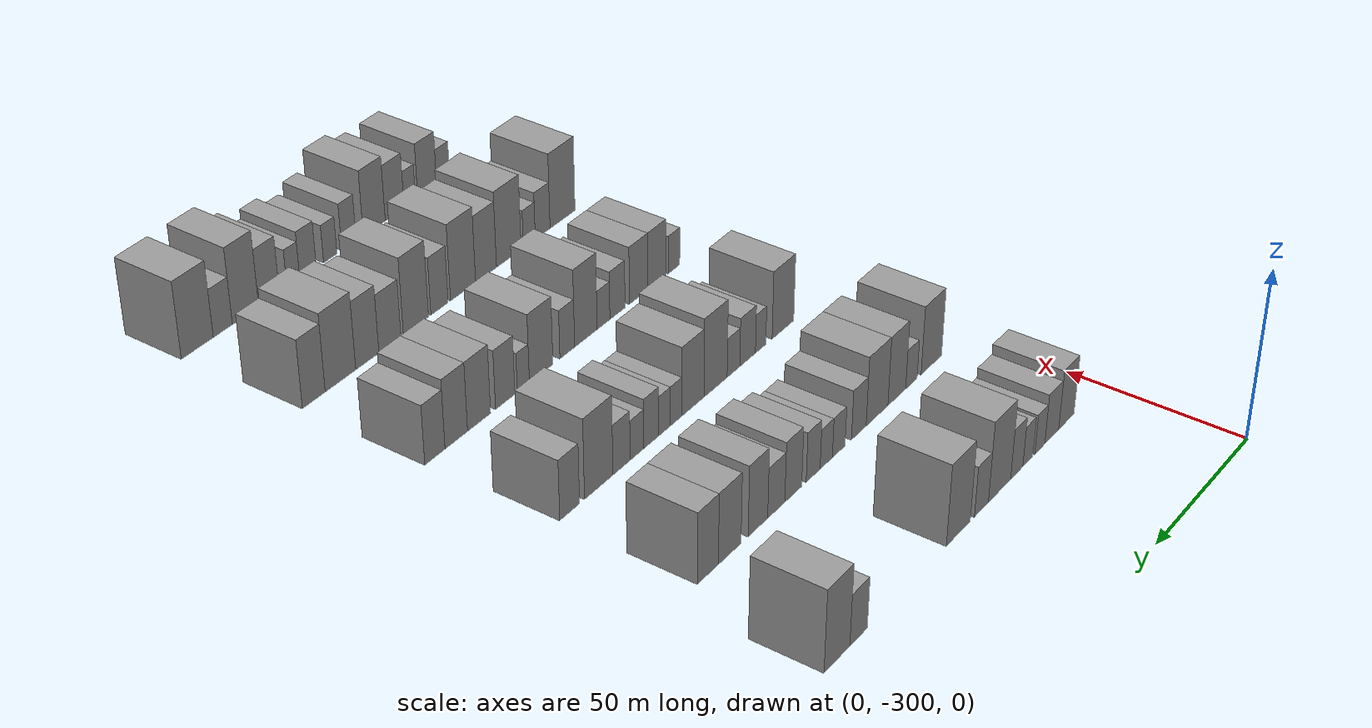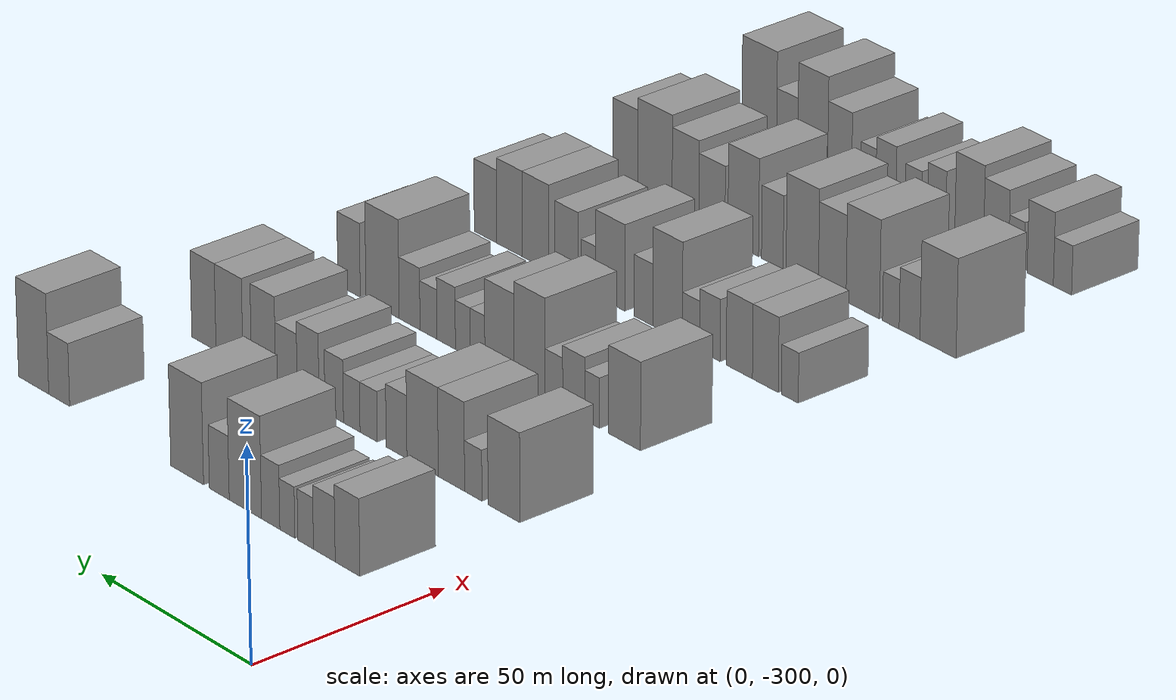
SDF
<sdf version="1.6">
 <world name="default">
  <model name="building_36">
   <static>1</static>
   <pose>50.0000 -280.6749 0 0.000000 0.000000 0.000000</pose>
   <link name="link">
    <pose>0 0 9.00 0 0 0</pose>
    <collision name="collision"><geometry><box><size>20.0000 8.1293 18.0000</size></box></geometry></collision>
    <visual name="visual">
     <cast_shadows>0</cast_shadows>
     <geometry><box><size>20.0000 8.1293 18.0000</size></box></geometry>
     <material>
      <script>
       <uri>model://grey_wall/materials/scripts</uri>
       <uri>model://grey_wall/materials/textures</uri>
       <name>vrc/grey_wall</name>
      </script>
     </material>
    </visual>
   </link>
  </model>
  <model name="building_37">
   <static>1</static>
   <pose>50.0000 -273.0091 0 0.000000 0.000000 0.000000</pose>
   <link name="link">
    <pose>0 0 7.50 0 0 0</pose>
    <collision name="collision"><geometry><box><size>20.0000 7.2023 15.0000</size></box></geometry></collision>
    <visual name="visual">
     <cast_shadows>0</cast_shadows>
     <geometry><box><size>20.0000 7.2023 15.0000</size></box></geometry>
     <material>
      <script>
       <uri>model://grey_wall/materials/scripts</uri>
       <uri>model://grey_wall/materials/textures</uri>
       <name>vrc/grey_wall</name>
      </script>
     </material>
    </visual>
   </link>
  </model>
  <model name="building_38">
   <static>1</static>
   <pose>50.0000 -266.8126 0 0.000000 0.000000 0.000000</pose>
   <link name="link">
    <pose>0 0 6.00 0 0 0</pose>
    <collision name="collision"><geometry><box><size>20.0000 5.1906 12.0000</size></box></geometry></collision>
    <visual name="visual">
     <cast_shadows>0</cast_shadows>
     <geometry><box><size>20.0000 5.1906 12.0000</size></box></geometry>
     <material>
      <script>
       <uri>model://grey_wall/materials/scripts</uri>
       <uri>model://grey_wall/materials/textures</uri>
       <name>vrc/grey_wall</name>
      </script>
     </material>
    </visual>
   </link>
  </model>
  <model name="building_39">
   <static>1</static>
   <pose>50.0000 -260.6925 0 0.000000 0.000000 0.000000</pose>
   <link name="link">
    <pose>0 0 6.00 0 0 0</pose>
    <collision name="collision"><geometry><box><size>20.0000 5.0496 12.0000</size></box></geometry></collision>
    <visual name="visual">
     <cast_shadows>0</cast_shadows>
     <geometry><box><size>20.0000 5.0496 12.0000</size></box></geometry>
     <material>
      <script>
       <uri>model://grey_wall/materials/scripts</uri>
       <uri>model://grey_wall/materials/textures</uri>
       <name>vrc/grey_wall</name>
      </script>
     </material>
    </visual>
   </link>
  </model>
  <model name="building_40">
   <static>1</static>
   <pose>50.0000 -255.1026 0 0.000000 0.000000 0.000000</pose>
   <link name="link">
    <pose>0 0 7.50 0 0 0</pose>
    <collision name="collision"><geometry><box><size>20.0000 6.1303 15.0000</size></box></geometry></collision>
    <visual name="visual">
     <cast_shadows>0</cast_shadows>
     <geometry><box><size>20.0000 6.1303 15.0000</size></box></geometry>
     <material>
      <script>
       <uri>model://grey_wall/materials/scripts</uri>
       <uri>model://grey_wall/materials/textures</uri>
       <name>vrc/grey_wall</name>
      </script>
     </material>
    </visual>
   </link>
  </model>
  <model name="building_41">
   <static>1</static>
   <pose>50.0000 -246.5571 0 0.000000 0.000000 0.000000</pose>
   <link name="link">
    <pose>0 0 12.00 0 0 0</pose>
    <collision name="collision"><geometry><box><size>20.0000 10.9608 24.0000</size></box></geometry></collision>
    <visual name="visual">
     <cast_shadows>0</cast_shadows>
     <geometry><box><size>20.0000 10.9608 24.0000</size></box></geometry>
     <material>
      <script>
       <uri>model://grey_wall/materials/scripts</uri>
       <uri>model://grey_wall/materials/textures</uri>
       <name>vrc/grey_wall</name>
      </script>
     </material>
    </visual>
   </link>
  </model>
  <model name="building_42">
   <static>1</static>
   <pose>50.0000 -237.6984 0 0.000000 0.000000 0.000000</pose>
   <link name="link">
    <pose>0 0 7.50 0 0 0</pose>
    <collision name="collision"><geometry><box><size>20.0000 6.7566 15.0000</size></box></geometry></collision>
    <visual name="visual">
     <cast_shadows>0</cast_shadows>
     <geometry><box><size>20.0000 6.7566 15.0000</size></box></geometry>
     <material>
      <script>
       <uri>model://grey_wall/materials/scripts</uri>
       <uri>model://grey_wall/materials/textures</uri>
       <name>vrc/grey_wall</name>
      </script>
     </material>
    </visual>
   </link>
  </model>
  <model name="building_43">
   <static>1</static>
   <pose>50.0000 -226.6820 0 0.000000 0.000000 0.000000</pose>
   <link name="link">
    <pose>0 0 12.00 0 0 0</pose>
    <collision name="collision"><geometry><box><size>20.0000 11.2763 24.0000</size></box></geometry></collision>
    <visual name="visual">
     <cast_shadows>0</cast_shadows>
     <geometry><box><size>20.0000 11.2763 24.0000</size></box></geometry>
     <material>
      <script>
       <uri>model://grey_wall/materials/scripts</uri>
       <uri>model://grey_wall/materials/textures</uri>
       <name>vrc/grey_wall</name>
      </script>
     </material>
    </visual>
   </link>
  </model>
  <model name="building_44">
   <static>1</static>
   <pose>50.0000 -181.8507 0 0.000000 0.000000 0.000000</pose>
   <link name="link">
    <pose>0 0 7.50 0 0 0</pose>
    <collision name="collision"><geometry><box><size>20.0000 7.4621 15.0000</size></box></geometry></collision>
    <visual name="visual">
     <cast_shadows>0</cast_shadows>
     <geometry><box><size>20.0000 7.4621 15.0000</size></box></geometry>
     <material>
      <script>
       <uri>model://grey_wall/materials/scripts</uri>
       <uri>model://grey_wall/materials/textures</uri>
       <name>vrc/grey_wall</name>
      </script>
     </material>
    </visual>
   </link>
  </model>
  <model name="building_45">
   <static>1</static>
   <pose>50.0000 -172.7117 0 0.000000 0.000000 0.000000</pose>
   <link name="link">
    <pose>0 0 12.00 0 0 0</pose>
    <collision name="collision"><geometry><box><size>20.0000 10.8159 24.0000</size></box></geometry></collision>
    <visual name="visual">
     <cast_shadows>0</cast_shadows>
     <geometry><box><size>20.0000 10.8159 24.0000</size></box></geometry>
     <material>
      <script>
       <uri>model://grey_wall/materials/scripts</uri>
       <uri>model://grey_wall/materials/textures</uri>
       <name>vrc/grey_wall</name>
      </script>
     </material>
    </visual>
   </link>
  </model>
  <model name="building_163">
   <static>1</static>
   <pose>90.0000 -282.6709 0 0.000000 0.000000 0.000000</pose>
   <link name="link">
    <pose>0 0 10.50 0 0 0</pose>
    <collision name="collision"><geometry><box><size>20.0000 10.4074 21.0000</size></box></geometry></collision>
    <visual name="visual">
     <cast_shadows>0</cast_shadows>
     <geometry><box><size>20.0000 10.4074 21.0000</size></box></geometry>
     <material>
      <script>
       <uri>model://grey_wall/materials/scripts</uri>
       <uri>model://grey_wall/materials/textures</uri>
       <name>vrc/grey_wall</name>
      </script>
     </material>
    </visual>
   </link>
  </model>
  <model name="building_164">
   <static>1</static>
   <pose>90.0000 -272.6101 0 0.000000 0.000000 0.000000</pose>
   <link name="link">
    <pose>0 0 6.00 0 0 0</pose>
    <collision name="collision"><geometry><box><size>20.0000 5.7142 12.0000</size></box></geometry></collision>
    <visual name="visual">
     <cast_shadows>0</cast_shadows>
     <geometry><box><size>20.0000 5.7142 12.0000</size></box></geometry>
     <material>
      <script>
       <uri>model://grey_wall/materials/scripts</uri>
       <uri>model://grey_wall/materials/textures</uri>
       <name>vrc/grey_wall</name>
      </script>
     </material>
    </visual>
   </link>
  </model>
  <model name="building_165">
   <static>1</static>
   <pose>90.0000 -265.3916 0 0.000000 0.000000 0.000000</pose>
   <link name="link">
    <pose>0 0 10.50 0 0 0</pose>
    <collision name="collision"><geometry><box><size>20.0000 8.7228 21.0000</size></box></geometry></collision>
    <visual name="visual">
     <cast_shadows>0</cast_shadows>
     <geometry><box><size>20.0000 8.7228 21.0000</size></box></geometry>
     <material>
      <script>
       <uri>model://grey_wall/materials/scripts</uri>
       <uri>model://grey_wall/materials/textures</uri>
       <name>vrc/grey_wall</name>
      </script>
     </material>
    </visual>
   </link>
  </model>
  <model name="building_166">
   <static>1</static>
   <pose>90.0000 -255.7970 0 0.000000 0.000000 0.000000</pose>
   <link name="link">
    <pose>0 0 10.50 0 0 0</pose>
    <collision name="collision"><geometry><box><size>20.0000 10.4665 21.0000</size></box></geometry></collision>
    <visual name="visual">
     <cast_shadows>0</cast_shadows>
     <geometry><box><size>20.0000 10.4665 21.0000</size></box></geometry>
     <material>
      <script>
       <uri>model://grey_wall/materials/scripts</uri>
       <uri>model://grey_wall/materials/textures</uri>
       <name>vrc/grey_wall</name>
      </script>
     </material>
    </visual>
   </link>
  </model>
  <model name="building_167">
   <static>1</static>
   <pose>90.0000 -247.0839 0 0.000000 0.000000 0.000000</pose>
   <link name="link">
    <pose>0 0 7.50 0 0 0</pose>
    <collision name="collision"><geometry><box><size>20.0000 6.9595 15.0000</size></box></geometry></collision>
    <visual name="visual">
     <cast_shadows>0</cast_shadows>
     <geometry><box><size>20.0000 6.9595 15.0000</size></box></geometry>
     <material>
      <script>
       <uri>model://grey_wall/materials/scripts</uri>
       <uri>model://grey_wall/materials/textures</uri>
       <name>vrc/grey_wall</name>
      </script>
     </material>
    </visual>
   </link>
  </model>
  <model name="building_168">
   <static>1</static>
   <pose>90.0000 -237.6687 0 0.000000 0.000000 0.000000</pose>
   <link name="link">
    <pose>0 0 6.00 0 0 0</pose>
    <collision name="collision"><geometry><box><size>20.0000 5.8711 12.0000</size></box></geometry></collision>
    <visual name="visual">
     <cast_shadows>0</cast_shadows>
     <geometry><box><size>20.0000 5.8711 12.0000</size></box></geometry>
     <material>
      <script>
       <uri>model://grey_wall/materials/scripts</uri>
       <uri>model://grey_wall/materials/textures</uri>
       <name>vrc/grey_wall</name>
      </script>
     </material>
    </visual>
   </link>
  </model>
  <model name="building_169">
   <static>1</static>
   <pose>90.0000 -231.9184 0 0.000000 0.000000 0.000000</pose>
   <link name="link">
    <pose>0 0 6.00 0 0 0</pose>
    <collision name="collision"><geometry><box><size>20.0000 5.6294 12.0000</size></box></geometry></collision>
    <visual name="visual">
     <cast_shadows>0</cast_shadows>
     <geometry><box><size>20.0000 5.6294 12.0000</size></box></geometry>
     <material>
      <script>
       <uri>model://grey_wall/materials/scripts</uri>
       <uri>model://grey_wall/materials/textures</uri>
       <name>vrc/grey_wall</name>
      </script>
     </material>
    </visual>
   </link>
  </model>
  <model name="building_170">
   <static>1</static>
   <pose>90.0000 -225.9456 0 0.000000 0.000000 0.000000</pose>
   <link name="link">
    <pose>0 0 7.50 0 0 0</pose>
    <collision name="collision"><geometry><box><size>20.0000 6.3162 15.0000</size></box></geometry></collision>
    <visual name="visual">
     <cast_shadows>0</cast_shadows>
     <geometry><box><size>20.0000 6.3162 15.0000</size></box></geometry>
     <material>
      <script>
       <uri>model://grey_wall/materials/scripts</uri>
       <uri>model://grey_wall/materials/textures</uri>
       <name>vrc/grey_wall</name>
      </script>
     </material>
    </visual>
   </link>
  </model>
  <model name="building_171">
   <static>1</static>
   <pose>90.0000 -217.0329 0 0.000000 0.000000 0.000000</pose>
   <link name="link">
    <pose>0 0 9.00 0 0 0</pose>
    <collision name="collision"><geometry><box><size>20.0000 7.5092 18.0000</size></box></geometry></collision>
    <visual name="visual">
     <cast_shadows>0</cast_shadows>
     <geometry><box><size>20.0000 7.5092 18.0000</size></box></geometry>
     <material>
      <script>
       <uri>model://grey_wall/materials/scripts</uri>
       <uri>model://grey_wall/materials/textures</uri>
       <name>vrc/grey_wall</name>
      </script>
     </material>
    </visual>
   </link>
  </model>
  <model name="building_172">
   <static>1</static>
   <pose>90.0000 -209.5371 0 0.000000 0.000000 0.000000</pose>
   <link name="link">
    <pose>0 0 7.50 0 0 0</pose>
    <collision name="collision"><geometry><box><size>20.0000 7.4824 15.0000</size></box></geometry></collision>
    <visual name="visual">
     <cast_shadows>0</cast_shadows>
     <geometry><box><size>20.0000 7.4824 15.0000</size></box></geometry>
     <material>
      <script>
       <uri>model://grey_wall/materials/scripts</uri>
       <uri>model://grey_wall/materials/textures</uri>
       <name>vrc/grey_wall</name>
      </script>
     </material>
    </visual>
   </link>
  </model>
  <model name="building_173">
   <static>1</static>
   <pose>90.0000 -201.5894 0 0.000000 0.000000 0.000000</pose>
   <link name="link">
    <pose>0 0 10.50 0 0 0</pose>
    <collision name="collision"><geometry><box><size>20.0000 8.4130 21.0000</size></box></geometry></collision>
    <visual name="visual">
     <cast_shadows>0</cast_shadows>
     <geometry><box><size>20.0000 8.4130 21.0000</size></box></geometry>
     <material>
      <script>
       <uri>model://grey_wall/materials/scripts</uri>
       <uri>model://grey_wall/materials/textures</uri>
       <name>vrc/grey_wall</name>
      </script>
     </material>
    </visual>
   </link>
  </model>
  <model name="building_174">
   <static>1</static>
   <pose>90.0000 -189.6379 0 0.000000 0.000000 0.000000</pose>
   <link name="link">
    <pose>0 0 10.50 0 0 0</pose>
    <collision name="collision"><geometry><box><size>20.0000 9.4900 21.0000</size></box></geometry></collision>
    <visual name="visual">
     <cast_shadows>0</cast_shadows>
     <geometry><box><size>20.0000 9.4900 21.0000</size></box></geometry>
     <material>
      <script>
       <uri>model://grey_wall/materials/scripts</uri>
       <uri>model://grey_wall/materials/textures</uri>
       <name>vrc/grey_wall</name>
      </script>
     </material>
    </visual>
   </link>
  </model>
  <model name="building_175">
   <static>1</static>
   <pose>90.0000 -180.6091 0 0.000000 0.000000 0.000000</pose>
   <link name="link">
    <pose>0 0 10.50 0 0 0</pose>
    <collision name="collision"><geometry><box><size>20.0000 8.5676 21.0000</size></box></geometry></collision>
    <visual name="visual">
     <cast_shadows>0</cast_shadows>
     <geometry><box><size>20.0000 8.5676 21.0000</size></box></geometry>
     <material>
      <script>
       <uri>model://grey_wall/materials/scripts</uri>
       <uri>model://grey_wall/materials/textures</uri>
       <name>vrc/grey_wall</name>
      </script>
     </material>
    </visual>
   </link>
  </model>
  <model name="building_297">
   <static>1</static>
   <pose>130.0000 -274.2996 0 0.000000 0.000000 0.000000</pose>
   <link name="link">
    <pose>0 0 10.50 0 0 0</pose>
    <collision name="collision"><geometry><box><size>20.0000 10.4055 21.0000</size></box></geometry></collision>
    <visual name="visual">
     <cast_shadows>0</cast_shadows>
     <geometry><box><size>20.0000 10.4055 21.0000</size></box></geometry>
     <material>
      <script>
       <uri>model://grey_wall/materials/scripts</uri>
       <uri>model://grey_wall/materials/textures</uri>
       <name>vrc/grey_wall</name>
      </script>
     </material>
    </visual>
   </link>
  </model>
  <model name="building_298">
   <static>1</static>
   <pose>130.0000 -263.6416 0 0.000000 0.000000 0.000000</pose>
   <link name="link">
    <pose>0 0 6.00 0 0 0</pose>
    <collision name="collision"><geometry><box><size>20.0000 4.9104 12.0000</size></box></geometry></collision>
    <visual name="visual">
     <cast_shadows>0</cast_shadows>
     <geometry><box><size>20.0000 4.9104 12.0000</size></box></geometry>
     <material>
      <script>
       <uri>model://grey_wall/materials/scripts</uri>
       <uri>model://grey_wall/materials/textures</uri>
       <name>vrc/grey_wall</name>
      </script>
     </material>
    </visual>
   </link>
  </model>
  <model name="building_299">
   <static>1</static>
   <pose>130.0000 -257.5487 0 0.000000 0.000000 0.000000</pose>
   <link name="link">
    <pose>0 0 7.50 0 0 0</pose>
    <collision name="collision"><geometry><box><size>20.0000 7.2754 15.0000</size></box></geometry></collision>
    <visual name="visual">
     <cast_shadows>0</cast_shadows>
     <geometry><box><size>20.0000 7.2754 15.0000</size></box></geometry>
     <material>
      <script>
       <uri>model://grey_wall/materials/scripts</uri>
       <uri>model://grey_wall/materials/textures</uri>
       <name>vrc/grey_wall</name>
      </script>
     </material>
    </visual>
   </link>
  </model>
  <model name="building_300">
   <static>1</static>
   <pose>130.0000 -250.9940 0 0.000000 0.000000 0.000000</pose>
   <link name="link">
    <pose>0 0 6.00 0 0 0</pose>
    <collision name="collision"><geometry><box><size>20.0000 5.8338 12.0000</size></box></geometry></collision>
    <visual name="visual">
     <cast_shadows>0</cast_shadows>
     <geometry><box><size>20.0000 5.8338 12.0000</size></box></geometry>
     <material>
      <script>
       <uri>model://grey_wall/materials/scripts</uri>
       <uri>model://grey_wall/materials/textures</uri>
       <name>vrc/grey_wall</name>
      </script>
     </material>
    </visual>
   </link>
  </model>
  <model name="building_301">
   <static>1</static>
   <pose>130.0000 -242.8408 0 0.000000 0.000000 0.000000</pose>
   <link name="link">
    <pose>0 0 12.00 0 0 0</pose>
    <collision name="collision"><geometry><box><size>20.0000 10.4726 24.0000</size></box></geometry></collision>
    <visual name="visual">
     <cast_shadows>0</cast_shadows>
     <geometry><box><size>20.0000 10.4726 24.0000</size></box></geometry>
     <material>
      <script>
       <uri>model://grey_wall/materials/scripts</uri>
       <uri>model://grey_wall/materials/textures</uri>
       <name>vrc/grey_wall</name>
      </script>
     </material>
    </visual>
   </link>
  </model>
  <model name="building_302">
   <static>1</static>
   <pose>130.0000 -232.6954 0 0.000000 0.000000 0.000000</pose>
   <link name="link">
    <pose>0 0 10.50 0 0 0</pose>
    <collision name="collision"><geometry><box><size>20.0000 9.8182 21.0000</size></box></geometry></collision>
    <visual name="visual">
     <cast_shadows>0</cast_shadows>
     <geometry><box><size>20.0000 9.8182 21.0000</size></box></geometry>
     <material>
      <script>
       <uri>model://grey_wall/materials/scripts</uri>
       <uri>model://grey_wall/materials/textures</uri>
       <name>vrc/grey_wall</name>
      </script>
     </material>
    </visual>
   </link>
  </model>
  <model name="building_303">
   <static>1</static>
   <pose>130.0000 -225.2832 0 0.000000 0.000000 0.000000</pose>
   <link name="link">
    <pose>0 0 6.00 0 0 0</pose>
    <collision name="collision"><geometry><box><size>20.0000 5.0062 12.0000</size></box></geometry></collision>
    <visual name="visual">
     <cast_shadows>0</cast_shadows>
     <geometry><box><size>20.0000 5.0062 12.0000</size></box></geometry>
     <material>
      <script>
       <uri>model://grey_wall/materials/scripts</uri>
       <uri>model://grey_wall/materials/textures</uri>
       <name>vrc/grey_wall</name>
      </script>
     </material>
    </visual>
   </link>
  </model>
  <model name="building_304">
   <static>1</static>
   <pose>130.0000 -220.2561 0 0.000000 0.000000 0.000000</pose>
   <link name="link">
    <pose>0 0 6.00 0 0 0</pose>
    <collision name="collision"><geometry><box><size>20.0000 5.0479 12.0000</size></box></geometry></collision>
    <visual name="visual">
     <cast_shadows>0</cast_shadows>
     <geometry><box><size>20.0000 5.0479 12.0000</size></box></geometry>
     <material>
      <script>
       <uri>model://grey_wall/materials/scripts</uri>
       <uri>model://grey_wall/materials/textures</uri>
       <name>vrc/grey_wall</name>
      </script>
     </material>
    </visual>
   </link>
  </model>
  <model name="building_305">
   <static>1</static>
   <pose>130.0000 -214.5552 0 0.000000 0.000000 0.000000</pose>
   <link name="link">
    <pose>0 0 7.50 0 0 0</pose>
    <collision name="collision"><geometry><box><size>20.0000 6.3540 15.0000</size></box></geometry></collision>
    <visual name="visual">
     <cast_shadows>0</cast_shadows>
     <geometry><box><size>20.0000 6.3540 15.0000</size></box></geometry>
     <material>
      <script>
       <uri>model://grey_wall/materials/scripts</uri>
       <uri>model://grey_wall/materials/textures</uri>
       <name>vrc/grey_wall</name>
      </script>
     </material>
    </visual>
   </link>
  </model>
  <model name="building_306">
   <static>1</static>
   <pose>130.0000 -208.4741 0 0.000000 0.000000 0.000000</pose>
   <link name="link">
    <pose>0 0 6.00 0 0 0</pose>
    <collision name="collision"><geometry><box><size>20.0000 5.8082 12.0000</size></box></geometry></collision>
    <visual name="visual">
     <cast_shadows>0</cast_shadows>
     <geometry><box><size>20.0000 5.8082 12.0000</size></box></geometry>
     <material>
      <script>
       <uri>model://grey_wall/materials/scripts</uri>
       <uri>model://grey_wall/materials/textures</uri>
       <name>vrc/grey_wall</name>
      </script>
     </material>
    </visual>
   </link>
  </model>
  <model name="building_307">
   <static>1</static>
   <pose>130.0000 -201.9699 0 0.000000 0.000000 0.000000</pose>
   <link name="link">
    <pose>0 0 7.50 0 0 0</pose>
    <collision name="collision"><geometry><box><size>20.0000 7.2002 15.0000</size></box></geometry></collision>
    <visual name="visual">
     <cast_shadows>0</cast_shadows>
     <geometry><box><size>20.0000 7.2002 15.0000</size></box></geometry>
     <material>
      <script>
       <uri>model://grey_wall/materials/scripts</uri>
       <uri>model://grey_wall/materials/textures</uri>
       <name>vrc/grey_wall</name>
      </script>
     </material>
    </visual>
   </link>
  </model>
  <model name="building_308">
   <static>1</static>
   <pose>130.0000 -192.5753 0 0.000000 0.000000 0.000000</pose>
   <link name="link">
    <pose>0 0 12.00 0 0 0</pose>
    <collision name="collision"><geometry><box><size>20.0000 11.5890 24.0000</size></box></geometry></collision>
    <visual name="visual">
     <cast_shadows>0</cast_shadows>
     <geometry><box><size>20.0000 11.5890 24.0000</size></box></geometry>
     <material>
      <script>
       <uri>model://grey_wall/materials/scripts</uri>
       <uri>model://grey_wall/materials/textures</uri>
       <name>vrc/grey_wall</name>
      </script>
     </material>
    </visual>
   </link>
  </model>
  <model name="building_309">
   <static>1</static>
   <pose>130.0000 -180.8453 0 0.000000 0.000000 0.000000</pose>
   <link name="link">
    <pose>0 0 9.00 0 0 0</pose>
    <collision name="collision"><geometry><box><size>20.0000 7.8711 18.0000</size></box></geometry></collision>
    <visual name="visual">
     <cast_shadows>0</cast_shadows>
     <geometry><box><size>20.0000 7.8711 18.0000</size></box></geometry>
     <material>
      <script>
       <uri>model://grey_wall/materials/scripts</uri>
       <uri>model://grey_wall/materials/textures</uri>
       <name>vrc/grey_wall</name>
      </script>
     </material>
    </visual>
   </link>
  </model>
  <model name="building_437">
   <static>1</static>
   <pose>170.0000 -281.7641 0 0.000000 0.000000 0.000000</pose>
   <link name="link">
    <pose>0 0 6.00 0 0 0</pose>
    <collision name="collision"><geometry><box><size>20.0000 5.4678 12.0000</size></box></geometry></collision>
    <visual name="visual">
     <cast_shadows>0</cast_shadows>
     <geometry><box><size>20.0000 5.4678 12.0000</size></box></geometry>
     <material>
      <script>
       <uri>model://grey_wall/materials/scripts</uri>
       <uri>model://grey_wall/materials/textures</uri>
       <name>vrc/grey_wall</name>
      </script>
     </material>
    </visual>
   </link>
  </model>
  <model name="building_438">
   <static>1</static>
   <pose>170.0000 -273.8230 0 0.000000 0.000000 0.000000</pose>
   <link name="link">
    <pose>0 0 9.00 0 0 0</pose>
    <collision name="collision"><geometry><box><size>20.0000 8.4145 18.0000</size></box></geometry></collision>
    <visual name="visual">
     <cast_shadows>0</cast_shadows>
     <geometry><box><size>20.0000 8.4145 18.0000</size></box></geometry>
     <material>
      <script>
       <uri>model://grey_wall/materials/scripts</uri>
       <uri>model://grey_wall/materials/textures</uri>
       <name>vrc/grey_wall</name>
      </script>
     </material>
    </visual>
   </link>
  </model>
  <model name="building_439">
   <static>1</static>
   <pose>170.0000 -265.3281 0 0.000000 0.000000 0.000000</pose>
   <link name="link">
    <pose>0 0 9.00 0 0 0</pose>
    <collision name="collision"><geometry><box><size>20.0000 8.5753 18.0000</size></box></geometry></collision>
    <visual name="visual">
     <cast_shadows>0</cast_shadows>
     <geometry><box><size>20.0000 8.5753 18.0000</size></box></geometry>
     <material>
      <script>
       <uri>model://grey_wall/materials/scripts</uri>
       <uri>model://grey_wall/materials/textures</uri>
       <name>vrc/grey_wall</name>
      </script>
     </material>
    </visual>
   </link>
  </model>
  <model name="building_440">
   <static>1</static>
   <pose>170.0000 -255.6269 0 0.000000 0.000000 0.000000</pose>
   <link name="link">
    <pose>0 0 7.50 0 0 0</pose>
    <collision name="collision"><geometry><box><size>20.0000 6.8272 15.0000</size></box></geometry></collision>
    <visual name="visual">
     <cast_shadows>0</cast_shadows>
     <geometry><box><size>20.0000 6.8272 15.0000</size></box></geometry>
     <material>
      <script>
       <uri>model://grey_wall/materials/scripts</uri>
       <uri>model://grey_wall/materials/textures</uri>
       <name>vrc/grey_wall</name>
      </script>
     </material>
    </visual>
   </link>
  </model>
  <model name="building_441">
   <static>1</static>
   <pose>170.0000 -249.3652 0 0.000000 0.000000 0.000000</pose>
   <link name="link">
    <pose>0 0 6.00 0 0 0</pose>
    <collision name="collision"><geometry><box><size>20.0000 5.6961 12.0000</size></box></geometry></collision>
    <visual name="visual">
     <cast_shadows>0</cast_shadows>
     <geometry><box><size>20.0000 5.6961 12.0000</size></box></geometry>
     <material>
      <script>
       <uri>model://grey_wall/materials/scripts</uri>
       <uri>model://grey_wall/materials/textures</uri>
       <name>vrc/grey_wall</name>
      </script>
     </material>
    </visual>
   </link>
  </model>
  <model name="building_442">
   <static>1</static>
   <pose>170.0000 -241.5807 0 0.000000 0.000000 0.000000</pose>
   <link name="link">
    <pose>0 0 12.00 0 0 0</pose>
    <collision name="collision"><geometry><box><size>20.0000 9.8730 24.0000</size></box></geometry></collision>
    <visual name="visual">
     <cast_shadows>0</cast_shadows>
     <geometry><box><size>20.0000 9.8730 24.0000</size></box></geometry>
     <material>
      <script>
       <uri>model://grey_wall/materials/scripts</uri>
       <uri>model://grey_wall/materials/textures</uri>
       <name>vrc/grey_wall</name>
      </script>
     </material>
    </visual>
   </link>
  </model>
  <model name="building_443">
   <static>1</static>
   <pose>170.0000 -233.4594 0 0.000000 0.000000 0.000000</pose>
   <link name="link">
    <pose>0 0 7.50 0 0 0</pose>
    <collision name="collision"><geometry><box><size>20.0000 6.3696 15.0000</size></box></geometry></collision>
    <visual name="visual">
     <cast_shadows>0</cast_shadows>
     <geometry><box><size>20.0000 6.3696 15.0000</size></box></geometry>
     <material>
      <script>
       <uri>model://grey_wall/materials/scripts</uri>
       <uri>model://grey_wall/materials/textures</uri>
       <name>vrc/grey_wall</name>
      </script>
     </material>
    </visual>
   </link>
  </model>
  <model name="building_444">
   <static>1</static>
   <pose>170.0000 -222.3123 0 0.000000 0.000000 0.000000</pose>
   <link name="link">
    <pose>0 0 10.50 0 0 0</pose>
    <collision name="collision"><geometry><box><size>20.0000 9.9245 21.0000</size></box></geometry></collision>
    <visual name="visual">
     <cast_shadows>0</cast_shadows>
     <geometry><box><size>20.0000 9.9245 21.0000</size></box></geometry>
     <material>
      <script>
       <uri>model://grey_wall/materials/scripts</uri>
       <uri>model://grey_wall/materials/textures</uri>
       <name>vrc/grey_wall</name>
      </script>
     </material>
    </visual>
   </link>
  </model>
  <model name="building_445">
   <static>1</static>
   <pose>170.0000 -214.8328 0 0.000000 0.000000 0.000000</pose>
   <link name="link">
    <pose>0 0 6.00 0 0 0</pose>
    <collision name="collision"><geometry><box><size>20.0000 5.0345 12.0000</size></box></geometry></collision>
    <visual name="visual">
     <cast_shadows>0</cast_shadows>
     <geometry><box><size>20.0000 5.0345 12.0000</size></box></geometry>
     <material>
      <script>
       <uri>model://grey_wall/materials/scripts</uri>
       <uri>model://grey_wall/materials/textures</uri>
       <name>vrc/grey_wall</name>
      </script>
     </material>
    </visual>
   </link>
  </model>
  <model name="building_446">
   <static>1</static>
   <pose>170.0000 -207.3404 0 0.000000 0.000000 0.000000</pose>
   <link name="link">
    <pose>0 0 9.00 0 0 0</pose>
    <collision name="collision"><geometry><box><size>20.0000 7.9502 18.0000</size></box></geometry></collision>
    <visual name="visual">
     <cast_shadows>0</cast_shadows>
     <geometry><box><size>20.0000 7.9502 18.0000</size></box></geometry>
     <material>
      <script>
       <uri>model://grey_wall/materials/scripts</uri>
       <uri>model://grey_wall/materials/textures</uri>
       <name>vrc/grey_wall</name>
      </script>
     </material>
    </visual>
   </link>
  </model>
  <model name="building_447">
   <static>1</static>
   <pose>170.0000 -196.7416 0 0.000000 0.000000 0.000000</pose>
   <link name="link">
    <pose>0 0 10.50 0 0 0</pose>
    <collision name="collision"><geometry><box><size>20.0000 9.2474 21.0000</size></box></geometry></collision>
    <visual name="visual">
     <cast_shadows>0</cast_shadows>
     <geometry><box><size>20.0000 9.2474 21.0000</size></box></geometry>
     <material>
      <script>
       <uri>model://grey_wall/materials/scripts</uri>
       <uri>model://grey_wall/materials/textures</uri>
       <name>vrc/grey_wall</name>
      </script>
     </material>
    </visual>
   </link>
  </model>
  <model name="building_448">
   <static>1</static>
   <pose>170.0000 -187.6772 0 0.000000 0.000000 0.000000</pose>
   <link name="link">
    <pose>0 0 10.50 0 0 0</pose>
    <collision name="collision"><geometry><box><size>20.0000 8.8815 21.0000</size></box></geometry></collision>
    <visual name="visual">
     <cast_shadows>0</cast_shadows>
     <geometry><box><size>20.0000 8.8815 21.0000</size></box></geometry>
     <material>
      <script>
       <uri>model://grey_wall/materials/scripts</uri>
       <uri>model://grey_wall/materials/textures</uri>
       <name>vrc/grey_wall</name>
      </script>
     </material>
    </visual>
   </link>
  </model>
  <model name="building_449">
   <static>1</static>
   <pose>170.0000 -179.3187 0 0.000000 0.000000 0.000000</pose>
   <link name="link">
    <pose>0 0 9.00 0 0 0</pose>
    <collision name="collision"><geometry><box><size>20.0000 7.8355 18.0000</size></box></geometry></collision>
    <visual name="visual">
     <cast_shadows>0</cast_shadows>
     <geometry><box><size>20.0000 7.8355 18.0000</size></box></geometry>
     <material>
      <script>
       <uri>model://grey_wall/materials/scripts</uri>
       <uri>model://grey_wall/materials/textures</uri>
       <name>vrc/grey_wall</name>
      </script>
     </material>
    </visual>
   </link>
  </model>
  <model name="building_578">
   <static>1</static>
   <pose>210.0000 -284.8205 0 0.000000 0.000000 0.000000</pose>
   <link name="link">
    <pose>0 0 12.00 0 0 0</pose>
    <collision name="collision"><geometry><box><size>20.0000 11.6153 24.0000</size></box></geometry></collision>
    <visual name="visual">
     <cast_shadows>0</cast_shadows>
     <geometry><box><size>20.0000 11.6153 24.0000</size></box></geometry>
     <material>
      <script>
       <uri>model://grey_wall/materials/scripts</uri>
       <uri>model://grey_wall/materials/textures</uri>
       <name>vrc/grey_wall</name>
      </script>
     </material>
    </visual>
   </link>
  </model>
  <model name="building_579">
   <static>1</static>
   <pose>210.0000 -275.6405 0 0.000000 0.000000 0.000000</pose>
   <link name="link">
    <pose>0 0 7.50 0 0 0</pose>
    <collision name="collision"><geometry><box><size>20.0000 6.7447 15.0000</size></box></geometry></collision>
    <visual name="visual">
     <cast_shadows>0</cast_shadows>
     <geometry><box><size>20.0000 6.7447 15.0000</size></box></geometry>
     <material>
      <script>
       <uri>model://grey_wall/materials/scripts</uri>
       <uri>model://grey_wall/materials/textures</uri>
       <name>vrc/grey_wall</name>
      </script>
     </material>
    </visual>
   </link>
  </model>
  <model name="building_580">
   <static>1</static>
   <pose>210.0000 -269.5724 0 0.000000 0.000000 0.000000</pose>
   <link name="link">
    <pose>0 0 6.00 0 0 0</pose>
    <collision name="collision"><geometry><box><size>20.0000 5.3915 12.0000</size></box></geometry></collision>
    <visual name="visual">
     <cast_shadows>0</cast_shadows>
     <geometry><box><size>20.0000 5.3915 12.0000</size></box></geometry>
     <material>
      <script>
       <uri>model://grey_wall/materials/scripts</uri>
       <uri>model://grey_wall/materials/textures</uri>
       <name>vrc/grey_wall</name>
      </script>
     </material>
    </visual>
   </link>
  </model>
  <model name="building_581">
   <static>1</static>
   <pose>210.0000 -260.4000 0 0.000000 0.000000 0.000000</pose>
   <link name="link">
    <pose>0 0 12.00 0 0 0</pose>
    <collision name="collision"><geometry><box><size>20.0000 10.9534 24.0000</size></box></geometry></collision>
    <visual name="visual">
     <cast_shadows>0</cast_shadows>
     <geometry><box><size>20.0000 10.9534 24.0000</size></box></geometry>
     <material>
      <script>
       <uri>model://grey_wall/materials/scripts</uri>
       <uri>model://grey_wall/materials/textures</uri>
       <name>vrc/grey_wall</name>
      </script>
     </material>
    </visual>
   </link>
  </model>
  <model name="building_582">
   <static>1</static>
   <pose>210.0000 -250.3628 0 0.000000 0.000000 0.000000</pose>
   <link name="link">
    <pose>0 0 10.50 0 0 0</pose>
    <collision name="collision"><geometry><box><size>20.0000 9.1210 21.0000</size></box></geometry></collision>
    <visual name="visual">
     <cast_shadows>0</cast_shadows>
     <geometry><box><size>20.0000 9.1210 21.0000</size></box></geometry>
     <material>
      <script>
       <uri>model://grey_wall/materials/scripts</uri>
       <uri>model://grey_wall/materials/textures</uri>
       <name>vrc/grey_wall</name>
      </script>
     </material>
    </visual>
   </link>
  </model>
  <model name="building_583">
   <static>1</static>
   <pose>210.0000 -240.4233 0 0.000000 0.000000 0.000000</pose>
   <link name="link">
    <pose>0 0 12.00 0 0 0</pose>
    <collision name="collision"><geometry><box><size>20.0000 10.7580 24.0000</size></box></geometry></collision>
    <visual name="visual">
     <cast_shadows>0</cast_shadows>
     <geometry><box><size>20.0000 10.7580 24.0000</size></box></geometry>
     <material>
      <script>
       <uri>model://grey_wall/materials/scripts</uri>
       <uri>model://grey_wall/materials/textures</uri>
       <name>vrc/grey_wall</name>
      </script>
     </material>
    </visual>
   </link>
  </model>
  <model name="building_584">
   <static>1</static>
   <pose>210.0000 -230.4310 0 0.000000 0.000000 0.000000</pose>
   <link name="link">
    <pose>0 0 9.00 0 0 0</pose>
    <collision name="collision"><geometry><box><size>20.0000 7.2267 18.0000</size></box></geometry></collision>
    <visual name="visual">
     <cast_shadows>0</cast_shadows>
     <geometry><box><size>20.0000 7.2267 18.0000</size></box></geometry>
     <material>
      <script>
       <uri>model://grey_wall/materials/scripts</uri>
       <uri>model://grey_wall/materials/textures</uri>
       <name>vrc/grey_wall</name>
      </script>
     </material>
    </visual>
   </link>
  </model>
  <model name="building_585">
   <static>1</static>
   <pose>210.0000 -220.6412 0 0.000000 0.000000 0.000000</pose>
   <link name="link">
    <pose>0 0 12.00 0 0 0</pose>
    <collision name="collision"><geometry><box><size>20.0000 10.3529 24.0000</size></box></geometry></collision>
    <visual name="visual">
     <cast_shadows>0</cast_shadows>
     <geometry><box><size>20.0000 10.3529 24.0000</size></box></geometry>
     <material>
      <script>
       <uri>model://grey_wall/materials/scripts</uri>
       <uri>model://grey_wall/materials/textures</uri>
       <name>vrc/grey_wall</name>
      </script>
     </material>
    </visual>
   </link>
  </model>
  <model name="building_586">
   <static>1</static>
   <pose>210.0000 -210.0215 0 0.000000 0.000000 0.000000</pose>
   <link name="link">
    <pose>0 0 9.00 0 0 0</pose>
    <collision name="collision"><geometry><box><size>20.0000 8.8866 18.0000</size></box></geometry></collision>
    <visual name="visual">
     <cast_shadows>0</cast_shadows>
     <geometry><box><size>20.0000 8.8866 18.0000</size></box></geometry>
     <material>
      <script>
       <uri>model://grey_wall/materials/scripts</uri>
       <uri>model://grey_wall/materials/textures</uri>
       <name>vrc/grey_wall</name>
      </script>
     </material>
    </visual>
   </link>
  </model>
  <model name="building_587">
   <static>1</static>
   <pose>210.0000 -200.9967 0 0.000000 0.000000 0.000000</pose>
   <link name="link">
    <pose>0 0 10.50 0 0 0</pose>
    <collision name="collision"><geometry><box><size>20.0000 9.1631 21.0000</size></box></geometry></collision>
    <visual name="visual">
     <cast_shadows>0</cast_shadows>
     <geometry><box><size>20.0000 9.1631 21.0000</size></box></geometry>
     <material>
      <script>
       <uri>model://grey_wall/materials/scripts</uri>
       <uri>model://grey_wall/materials/textures</uri>
       <name>vrc/grey_wall</name>
      </script>
     </material>
    </visual>
   </link>
  </model>
  <model name="building_588">
   <static>1</static>
   <pose>210.0000 -190.4868 0 0.000000 0.000000 0.000000</pose>
   <link name="link">
    <pose>0 0 12.00 0 0 0</pose>
    <collision name="collision"><geometry><box><size>20.0000 11.8568 24.0000</size></box></geometry></collision>
    <visual name="visual">
     <cast_shadows>0</cast_shadows>
     <geometry><box><size>20.0000 11.8568 24.0000</size></box></geometry>
     <material>
      <script>
       <uri>model://grey_wall/materials/scripts</uri>
       <uri>model://grey_wall/materials/textures</uri>
       <name>vrc/grey_wall</name>
      </script>
     </material>
    </visual>
   </link>
  </model>
  <model name="building_589">
   <static>1</static>
   <pose>210.0000 -180.2220 0 0.000000 0.000000 0.000000</pose>
   <link name="link">
    <pose>0 0 10.50 0 0 0</pose>
    <collision name="collision"><geometry><box><size>20.0000 8.6727 21.0000</size></box></geometry></collision>
    <visual name="visual">
     <cast_shadows>0</cast_shadows>
     <geometry><box><size>20.0000 8.6727 21.0000</size></box></geometry>
     <material>
      <script>
       <uri>model://grey_wall/materials/scripts</uri>
       <uri>model://grey_wall/materials/textures</uri>
       <name>vrc/grey_wall</name>
      </script>
     </material>
    </visual>
   </link>
  </model>
  <model name="building_716">
   <static>1</static>
   <pose>250.0000 -281.4081 0 0.000000 0.000000 0.000000</pose>
   <link name="link">
    <pose>0 0 6.00 0 0 0</pose>
    <collision name="collision"><geometry><box><size>20.0000 5.8580 12.0000</size></box></geometry></collision>
    <visual name="visual">
     <cast_shadows>0</cast_shadows>
     <geometry><box><size>20.0000 5.8580 12.0000</size></box></geometry>
     <material>
      <script>
       <uri>model://grey_wall/materials/scripts</uri>
       <uri>model://grey_wall/materials/textures</uri>
       <name>vrc/grey_wall</name>
      </script>
     </material>
    </visual>
   </link>
  </model>
  <model name="building_717">
   <static>1</static>
   <pose>250.0000 -274.2579 0 0.000000 0.000000 0.000000</pose>
   <link name="link">
    <pose>0 0 9.00 0 0 0</pose>
    <collision name="collision"><geometry><box><size>20.0000 8.4424 18.0000</size></box></geometry></collision>
    <visual name="visual">
     <cast_shadows>0</cast_shadows>
     <geometry><box><size>20.0000 8.4424 18.0000</size></box></geometry>
     <material>
      <script>
       <uri>model://grey_wall/materials/scripts</uri>
       <uri>model://grey_wall/materials/textures</uri>
       <name>vrc/grey_wall</name>
      </script>
     </material>
    </visual>
   </link>
  </model>
  <model name="building_718">
   <static>1</static>
   <pose>250.0000 -266.5107 0 0.000000 0.000000 0.000000</pose>
   <link name="link">
    <pose>0 0 6.00 0 0 0</pose>
    <collision name="collision"><geometry><box><size>20.0000 5.0519 12.0000</size></box></geometry></collision>
    <visual name="visual">
     <cast_shadows>0</cast_shadows>
     <geometry><box><size>20.0000 5.0519 12.0000</size></box></geometry>
     <material>
      <script>
       <uri>model://grey_wall/materials/scripts</uri>
       <uri>model://grey_wall/materials/textures</uri>
       <name>vrc/grey_wall</name>
      </script>
     </material>
    </visual>
   </link>
  </model>
  <model name="building_719">
   <static>1</static>
   <pose>250.0000 -259.8906 0 0.000000 0.000000 0.000000</pose>
   <link name="link">
    <pose>0 0 9.00 0 0 0</pose>
    <collision name="collision"><geometry><box><size>20.0000 8.1884 18.0000</size></box></geometry></collision>
    <visual name="visual">
     <cast_shadows>0</cast_shadows>
     <geometry><box><size>20.0000 8.1884 18.0000</size></box></geometry>
     <material>
      <script>
       <uri>model://grey_wall/materials/scripts</uri>
       <uri>model://grey_wall/materials/textures</uri>
       <name>vrc/grey_wall</name>
      </script>
     </material>
    </visual>
   </link>
  </model>
  <model name="building_720">
   <static>1</static>
   <pose>250.0000 -251.0820 0 0.000000 0.000000 0.000000</pose>
   <link name="link">
    <pose>0 0 10.50 0 0 0</pose>
    <collision name="collision"><geometry><box><size>20.0000 9.4287 21.0000</size></box></geometry></collision>
    <visual name="visual">
     <cast_shadows>0</cast_shadows>
     <geometry><box><size>20.0000 9.4287 21.0000</size></box></geometry>
     <material>
      <script>
       <uri>model://grey_wall/materials/scripts</uri>
       <uri>model://grey_wall/materials/textures</uri>
       <name>vrc/grey_wall</name>
      </script>
     </material>
    </visual>
   </link>
  </model>
  <model name="building_721">
   <static>1</static>
   <pose>250.0000 -240.3441 0 0.000000 0.000000 0.000000</pose>
   <link name="link">
    <pose>0 0 7.50 0 0 0</pose>
    <collision name="collision"><geometry><box><size>20.0000 6.0470 15.0000</size></box></geometry></collision>
    <visual name="visual">
     <cast_shadows>0</cast_shadows>
     <geometry><box><size>20.0000 6.0470 15.0000</size></box></geometry>
     <material>
      <script>
       <uri>model://grey_wall/materials/scripts</uri>
       <uri>model://grey_wall/materials/textures</uri>
       <name>vrc/grey_wall</name>
      </script>
     </material>
    </visual>
   </link>
  </model>
  <model name="building_722">
   <static>1</static>
   <pose>250.0000 -232.5632 0 0.000000 0.000000 0.000000</pose>
   <link name="link">
    <pose>0 0 6.00 0 0 0</pose>
    <collision name="collision"><geometry><box><size>20.0000 5.5149 12.0000</size></box></geometry></collision>
    <visual name="visual">
     <cast_shadows>0</cast_shadows>
     <geometry><box><size>20.0000 5.5149 12.0000</size></box></geometry>
     <material>
      <script>
       <uri>model://grey_wall/materials/scripts</uri>
       <uri>model://grey_wall/materials/textures</uri>
       <name>vrc/grey_wall</name>
      </script>
     </material>
    </visual>
   </link>
  </model>
  <model name="building_723">
   <static>1</static>
   <pose>250.0000 -223.4421 0 0.000000 0.000000 0.000000</pose>
   <link name="link">
    <pose>0 0 7.50 0 0 0</pose>
    <collision name="collision"><geometry><box><size>20.0000 6.7273 15.0000</size></box></geometry></collision>
    <visual name="visual">
     <cast_shadows>0</cast_shadows>
     <geometry><box><size>20.0000 6.7273 15.0000</size></box></geometry>
     <material>
      <script>
       <uri>model://grey_wall/materials/scripts</uri>
       <uri>model://grey_wall/materials/textures</uri>
       <name>vrc/grey_wall</name>
      </script>
     </material>
    </visual>
   </link>
  </model>
  <model name="building_724">
   <static>1</static>
   <pose>250.0000 -217.4880 0 0.000000 0.000000 0.000000</pose>
   <link name="link">
    <pose>0 0 6.00 0 0 0</pose>
    <collision name="collision"><geometry><box><size>20.0000 5.1809 12.0000</size></box></geometry></collision>
    <visual name="visual">
     <cast_shadows>0</cast_shadows>
     <geometry><box><size>20.0000 5.1809 12.0000</size></box></geometry>
     <material>
      <script>
       <uri>model://grey_wall/materials/scripts</uri>
       <uri>model://grey_wall/materials/textures</uri>
       <name>vrc/grey_wall</name>
      </script>
     </material>
    </visual>
   </link>
  </model>
  <model name="building_725">
   <static>1</static>
   <pose>250.0000 -207.8215 0 0.000000 0.000000 0.000000</pose>
   <link name="link">
    <pose>0 0 9.00 0 0 0</pose>
    <collision name="collision"><geometry><box><size>20.0000 8.1519 18.0000</size></box></geometry></collision>
    <visual name="visual">
     <cast_shadows>0</cast_shadows>
     <geometry><box><size>20.0000 8.1519 18.0000</size></box></geometry>
     <material>
      <script>
       <uri>model://grey_wall/materials/scripts</uri>
       <uri>model://grey_wall/materials/textures</uri>
       <name>vrc/grey_wall</name>
      </script>
     </material>
    </visual>
   </link>
  </model>
  <model name="building_726">
   <static>1</static>
   <pose>250.0000 -198.6394 0 0.000000 0.000000 0.000000</pose>
   <link name="link">
    <pose>0 0 12.00 0 0 0</pose>
    <collision name="collision"><geometry><box><size>20.0000 10.2123 24.0000</size></box></geometry></collision>
    <visual name="visual">
     <cast_shadows>0</cast_shadows>
     <geometry><box><size>20.0000 10.2123 24.0000</size></box></geometry>
     <material>
      <script>
       <uri>model://grey_wall/materials/scripts</uri>
       <uri>model://grey_wall/materials/textures</uri>
       <name>vrc/grey_wall</name>
      </script>
     </material>
    </visual>
   </link>
  </model>
  <model name="building_727">
   <static>1</static>
   <pose>250.0000 -189.8878 0 0.000000 0.000000 0.000000</pose>
   <link name="link">
    <pose>0 0 7.50 0 0 0</pose>
    <collision name="collision"><geometry><box><size>20.0000 7.2909 15.0000</size></box></geometry></collision>
    <visual name="visual">
     <cast_shadows>0</cast_shadows>
     <geometry><box><size>20.0000 7.2909 15.0000</size></box></geometry>
     <material>
      <script>
       <uri>model://grey_wall/materials/scripts</uri>
       <uri>model://grey_wall/materials/textures</uri>
       <name>vrc/grey_wall</name>
      </script>
     </material>
    </visual>
   </link>
  </model>
  <model name="building_728">
   <static>1</static>
   <pose>250.0000 -180.2504 0 0.000000 0.000000 0.000000</pose>
   <link name="link">
    <pose>0 0 12.00 0 0 0</pose>
    <collision name="collision"><geometry><box><size>20.0000 11.9840 24.0000</size></box></geometry></collision>
    <visual name="visual">
     <cast_shadows>0</cast_shadows>
     <geometry><box><size>20.0000 11.9840 24.0000</size></box></geometry>
     <material>
      <script>
       <uri>model://grey_wall/materials/scripts</uri>
       <uri>model://grey_wall/materials/textures</uri>
       <name>vrc/grey_wall</name>
      </script>
     </material>
    </visual>
   </link>
  </model>
 </world>
</sdf>
